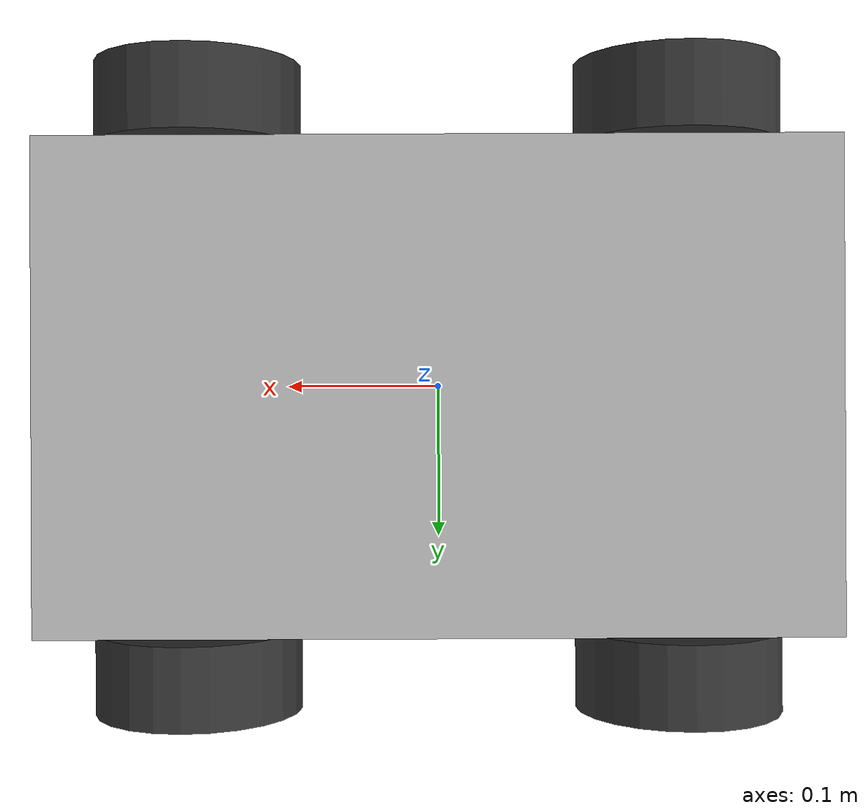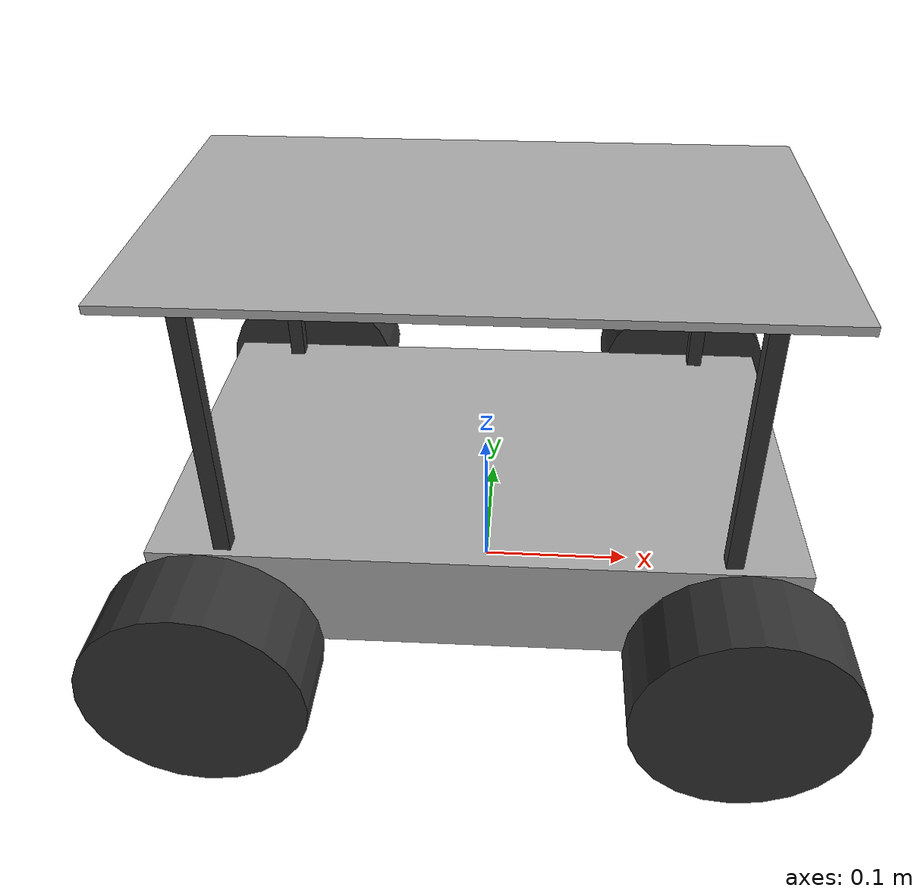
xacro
<robot xmlns:xacro="http://www.ros.org/wiki/xacro">
    <!-- refer: https://www.bilibili.com/video/BV1mm4y1z7rn -->
    <!-- 1 需要声明变量 -->
    <xacro:property name="PI" value="3.141592653" />
    <!-- 底盘尺寸 -->
    <xacro:property name="CAR_LENGTH" value="0.387" />
    <xacro:property name="CAR_WIDTH" value="0.24" />
    <xacro:property name="CAR_HEIGHT" value="0.066" />
    <!-- 轮胎尺寸 -->
    <xacro:property name="WHEEL_RADIUS" value="0.0635" />
    <xacro:property name="WHEEL_LEHGTH" value="0.05" /> <!-- wheel width -->
    <xacro:property name="DISTANCE" value="0.033" /> <!-- Ground clearance -->

    <xacro:property name="WHEEL_CAR_DISTANCE" value="0.03" />
    <!-- 轮胎关节偏移量 -->
    <xacro:property name="WHEEL_JOINT_X" value="${CAR_LENGTH/2 - 0.045}" />
    <xacro:property name="WHEEL_JOINT_Y" value="${CAR_WIDTH/2 + WHEEL_CAR_DISTANCE + WHEEL_LEHGTH/2}" />
    <xacro:property name="WHEEL_JOINT_Z" value="${-(CAR_HEIGHT/2+DISTANCE-WHEEL_RADIUS)}" />

    <xacro:property name="PILLAR" value="0.16" />

    <!-- 颜色定义 -->
    <material name="white">
        <color rgba="0.7 0.7 0.7 1.0"/>
    </material>
    <material name="black">
        <color rgba="0.2 0.2 0.2 1.0"/>
    </material>

    <!-- 2 设置base_footprint -->
    <link name="base_footprint">
        <visual>
            <geometry>
                <sphere radius="0.001"/>
            </geometry>
        </visual>
        <collision>
            <geometry>
                <sphere radius="0.001"/>
            </geometry>
        </collision>
        <xacro:sphere_inertial_matrix mass="0.001" radius="0.001" />
    </link>

    <!-- 3 set base_link -->
    <link name="base_link">
        <visual>
            <geometry>
                <box size="${CAR_LENGTH} ${CAR_WIDTH} ${CAR_HEIGHT}"/>
            </geometry>
            <material name="white"/>
        </visual>
        <collision>
            <geometry>
                <box size="${CAR_LENGTH} ${CAR_WIDTH} ${CAR_HEIGHT}"/>
            </geometry>
        </collision>
        <xacro:box_inertial_matrix mass="5" length="${CAR_LENGTH}" width="${CAR_WIDTH}" height="${CAR_HEIGHT}" />
    </link>

    <!-- 4 connect base_footprint with base_link -->
    <joint name="base_link2base_footprint" type="fixed">
        <parent link="base_footprint"/>
        <child link="base_link"/>
        <!-- 车体高度+离地间距 = 0.07/2 + 0.015 = 0.05 -->
        <origin xyz="0.0 0.0 ${CAR_HEIGHT/2+DISTANCE}"/>
    </joint>

    <gazebo reference="base_link">
        <material>Gazebo/White</material>
    </gazebo>

    <!-- 5 定义车轮相关的宏 -->
    <!-- 宏函数创建规则：
            封装复用代码变量以参数形式爆露出去
    -->
    <!-- link : name -->
    <xacro:macro name="wheel_func" params="link_name front_flag left_flag">
        <link name="${link_name}">
            <visual>
                <geometry>
                    <cylinder radius="${WHEEL_RADIUS}" length="${WHEEL_LEHGTH}"/>
                </geometry>
                <material name="black"/>
                <origin rpy="${PI/2} 0.0 0.0"/>
            </visual>
            <collision>
                <geometry>
                    <cylinder radius="${WHEEL_RADIUS}" length="${WHEEL_LEHGTH}"/>
                </geometry>
                <origin rpy="${PI/2} 0.0 0.0"/>
            </collision>
            <xacro:cylinder_inertial_matrix mass="1" radius="${WHEEL_RADIUS}" length="${WHEEL_LEHGTH}" />
        </link>

        <gazebo reference="${link_name}">
            <material>Gazebo/Black</material>
        </gazebo>

        <joint name="${link_name}2base_link" type="continuous">
            <parent link="base_link"/>
            <child link="${link_name}"/>
            <!-- 平移 z = 车体高度/2 + 离地间距 - 车轮半径 -->
            <origin xyz="${WHEEL_JOINT_X * front_flag} ${WHEEL_JOINT_Y * left_flag} ${WHEEL_JOINT_Z}"/>
            <!-- 旋转 -->
            <axis xyz="0 1 0"/>
        </joint>

        <link name="${link_name}_link">
            <visual>
                <geometry>
                    <cylinder radius="0.01" length="${WHEEL_CAR_DISTANCE}"/>
                </geometry>
                <material name="black" />
                <origin rpy="${PI/2} 0.0 0.0"/>
            </visual>
            <collision>
                <geometry>
                    <cylinder radius="0.01" length="${WHEEL_CAR_DISTANCE}"/>
                </geometry>
                <origin rpy="${PI/2} 0.0 0.0"/>
            </collision>
            <xacro:cylinder_inertial_matrix mass="1" radius="0.01" length="${WHEEL_CAR_DISTANCE}" />
        </link>
        <gazebo reference="${link_name}_link">
            <material>Gazebo/Black</material>
        </gazebo>
        <joint name="${link_name}_joint" type="fixed">
            <parent link="base_link"/>
            <child link="${link_name}_link"/>
            <origin xyz="${WHEEL_JOINT_X * front_flag} ${(CAR_WIDTH/2+WHEEL_CAR_DISTANCE/2) * left_flag} ${WHEEL_JOINT_Z}"/>
        </joint>

        <link name="${link_name}_pillar">
            <visual>
                <geometry>
                    <box size="0.01 0.01 0.16"/>
                </geometry>
                <material name="black" />
                <origin rpy="0.0 0.0 0.0"/>
            </visual>
            <collision>
                <geometry>
                    <box size="0.01 0.01 0.16"/>
                </geometry>
                <origin rpy="0.0 0.0 0.0"/>
            </collision>
            <xacro:box_inertial_matrix mass="1" length="0.01" width="0.01" height="0.16" />
        </link>
        <gazebo reference="${link_name}_pillar">
            <material>Gazebo/Black</material>
        </gazebo>
        <joint name="${link_name}_pillar2base_joint" type="fixed">
            <parent link="base_link"/>
            <child link="${link_name}_pillar"/>
            <origin xyz="${WHEEL_JOINT_X * front_flag} ${(CAR_WIDTH/2 -0.01) * left_flag} ${CAR_HEIGHT/2+PILLAR/2}"/>
        </joint>

    </xacro:macro>
    <!-- joint: name child_link orgin_x origin_y -->
    <xacro:wheel_func link_name="front_left" front_flag="1" left_flag="1"/>
    <xacro:wheel_func link_name="front_right" front_flag="1" left_flag="-1"/>
    <xacro:wheel_func link_name="back_left" front_flag="-1" left_flag="1"/>
    <xacro:wheel_func link_name="back_right" front_flag="-1" left_flag="-1"/>

    <link name="base_link_2">
        <visual>
            <geometry>
                <box size="${CAR_LENGTH} ${CAR_WIDTH} 0.005"/>
            </geometry>
            <material name="white"/>
        </visual>
        <collision>
            <geometry>
                <box size="${CAR_LENGTH} ${CAR_WIDTH} 0.005"/>
            </geometry>
        </collision>
        <xacro:box_inertial_matrix mass="1" length="${CAR_LENGTH}" width="${CAR_WIDTH}" height="0.005" />
    </link>
    <gazebo reference="base_link_2">
        <material>Gazebo/White</material>
    </gazebo>
    <joint name="base_link2base_link_2" type="fixed">
        <parent link="base_link"/>
        <child link="base_link_2"/>
        <origin xyz="0.0 0.0 ${CAR_HEIGHT/2+PILLAR}"/>
    </joint>

</robot>
